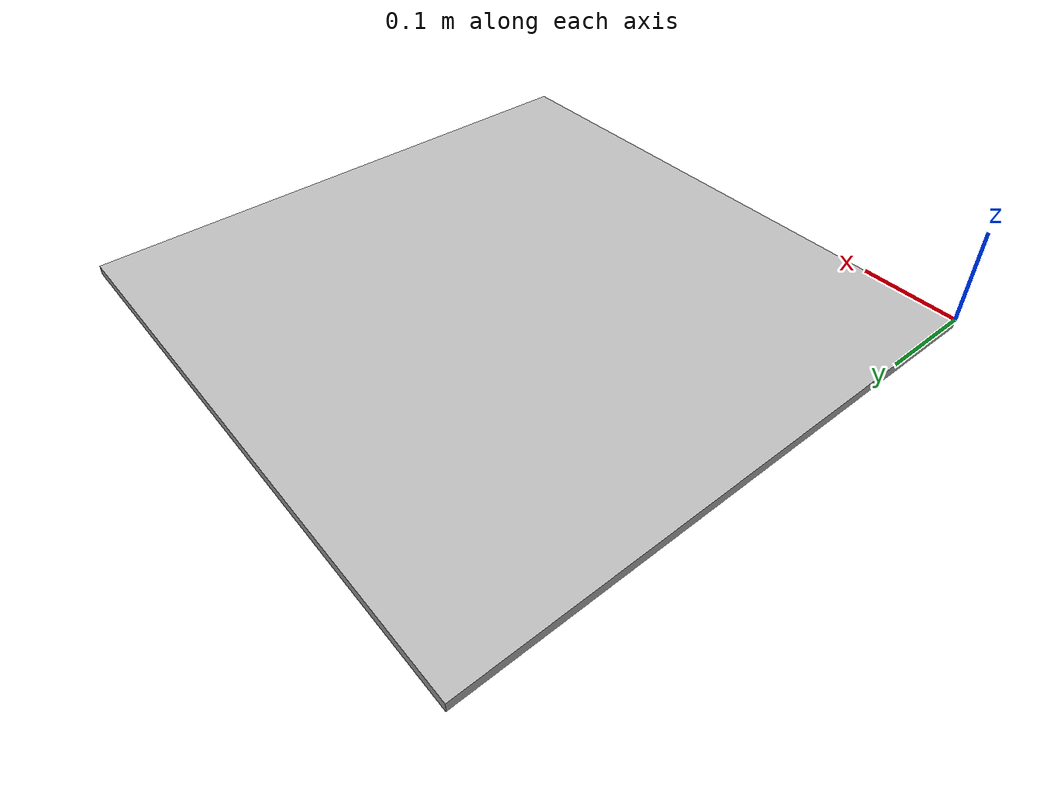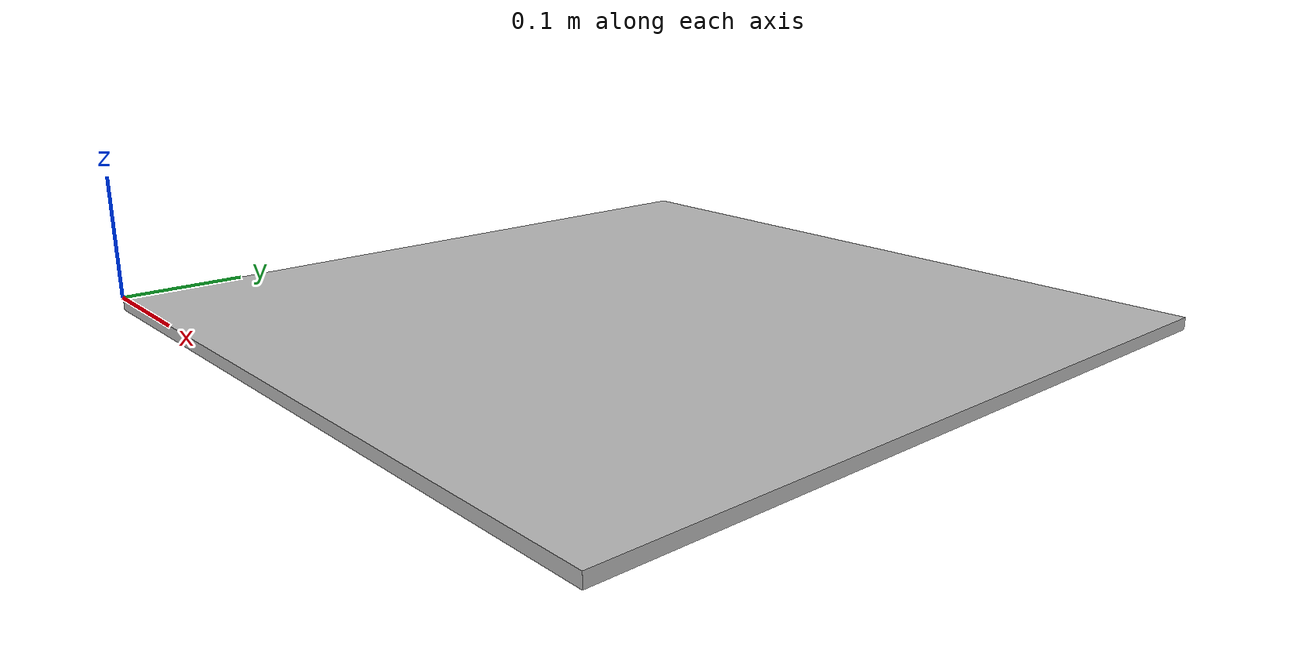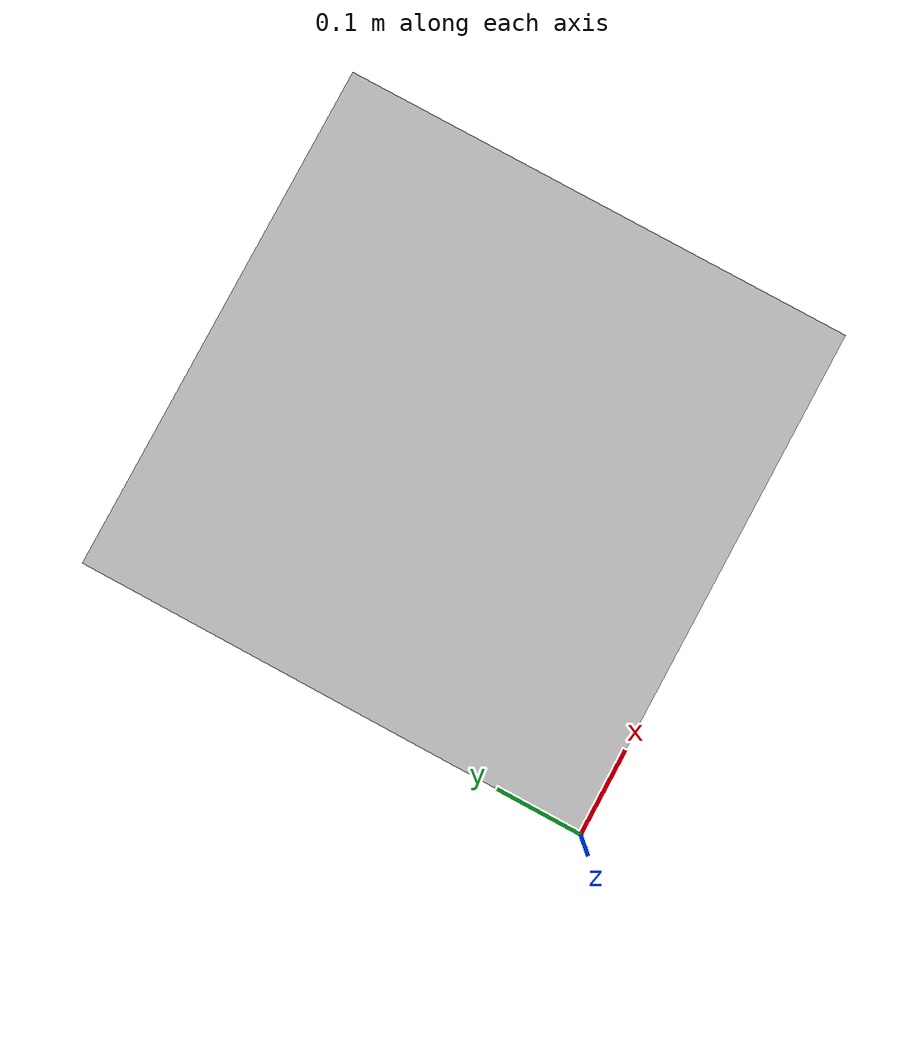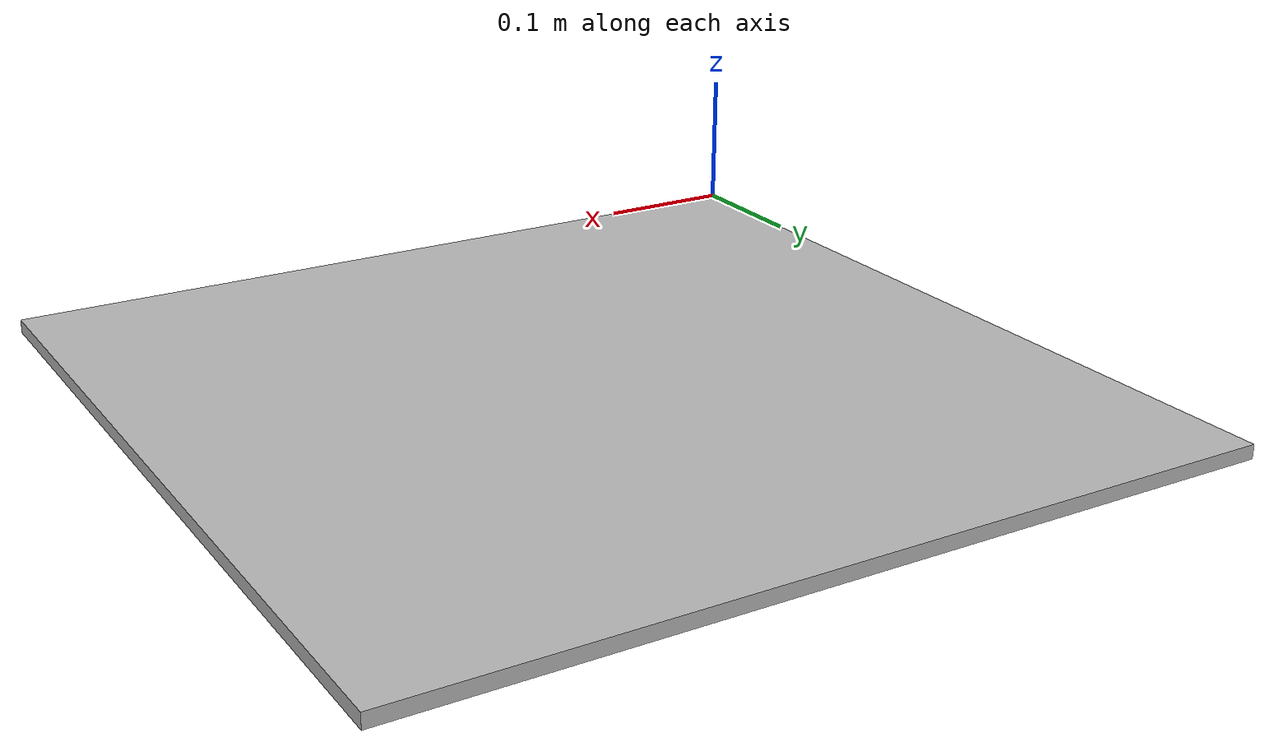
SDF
<?xml version="1.0" ?>
<sdf version="1.5">
  <model name="Plate60">
        <static>true</static>
    <link name="link">
    <gravity>0</gravity>
      <collision name="collision">
        <geometry>
          <mesh>
            <scale>1 1 1</scale>
            <uri>model://plate_60/meshes/plate60.dae</uri>
          </mesh>
        </geometry>
      </collision>
      <visual name="visual">
        <geometry>
          <mesh>
            <scale>1 1 1</scale>
            <uri>model://plate_60/meshes/plate60.dae</uri>
          </mesh>
        </geometry>
      </visual>
    </link>
  </model>
</sdf>
